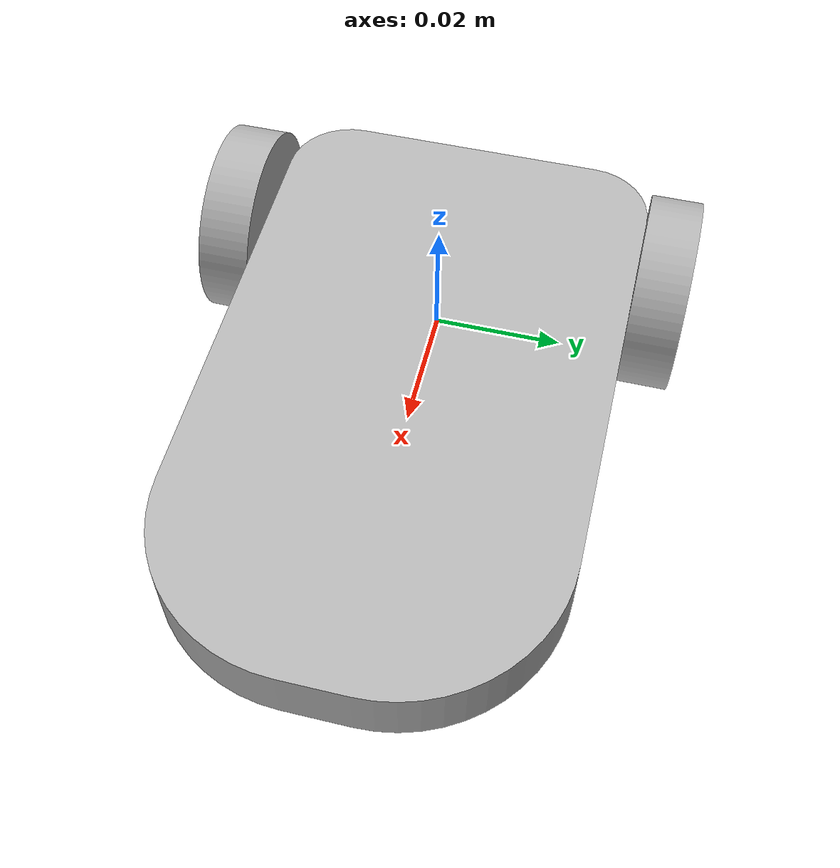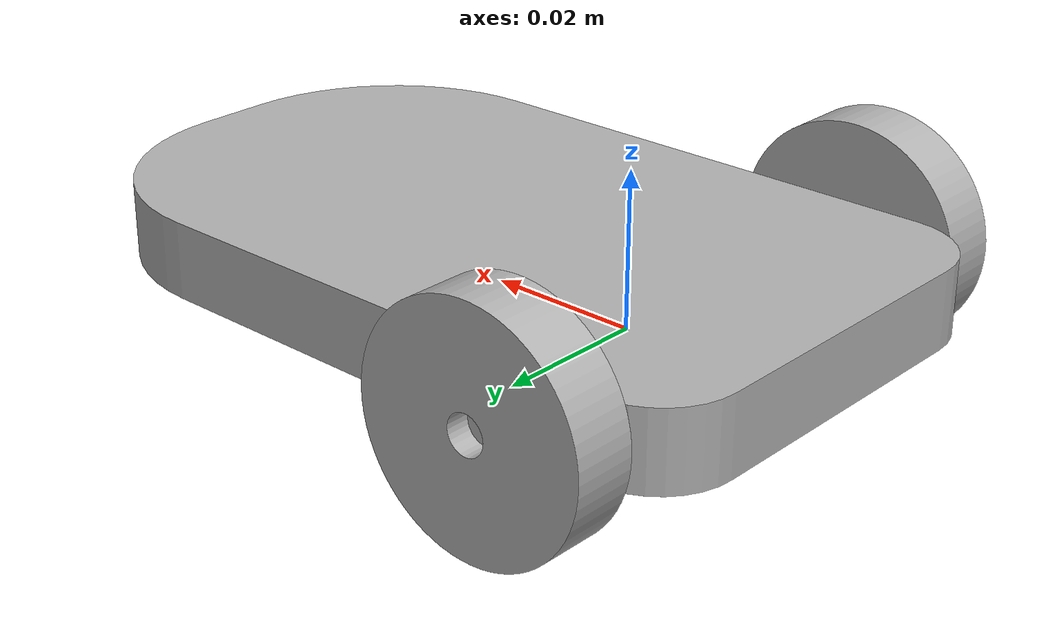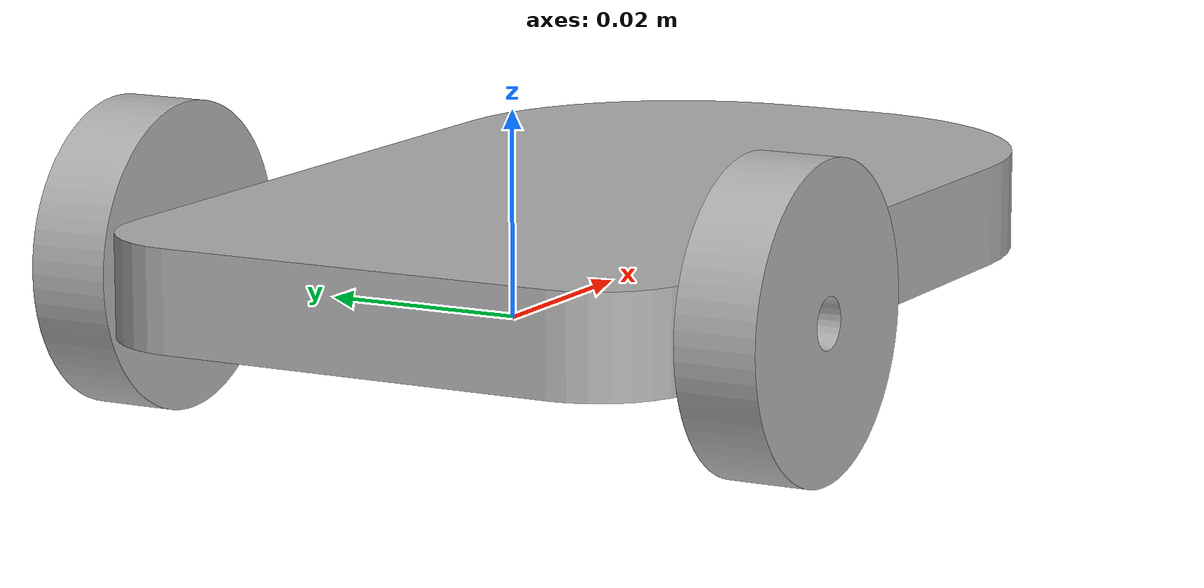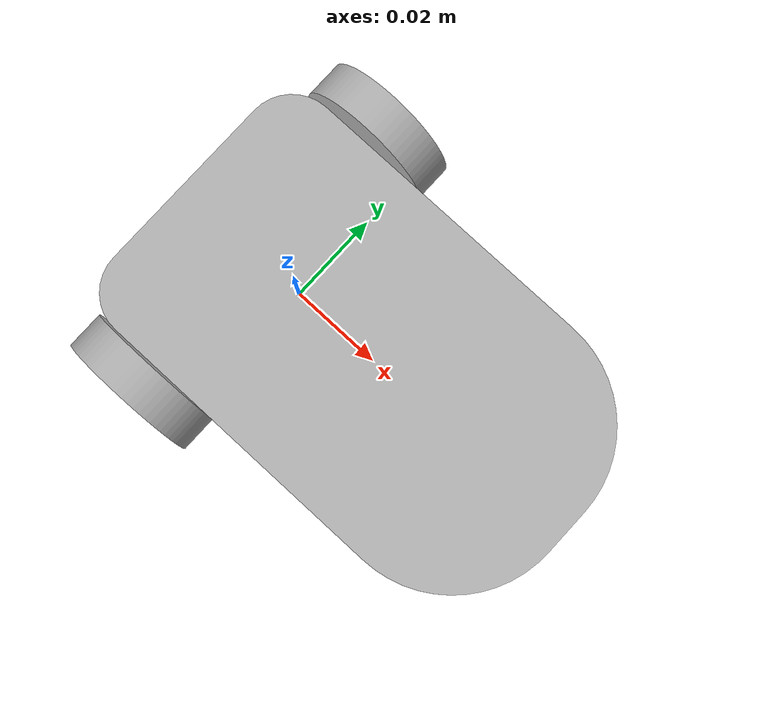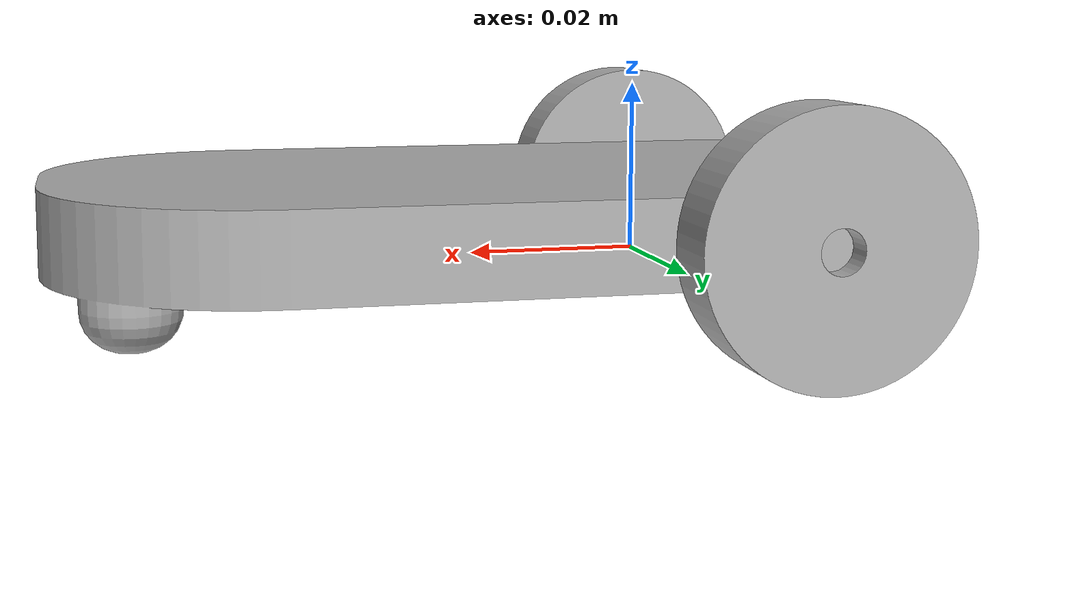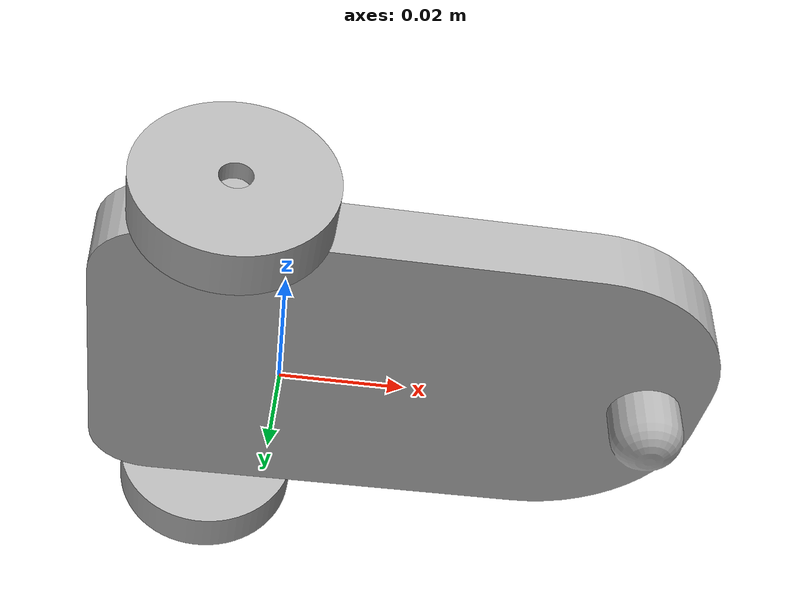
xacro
<?xml version="1.0" ?>
<robot name="diff_drive_bot" xmlns:xacro="http://www.ros.org/wiki/xacro">

<xacro:include filename="$(find diff_drive_bot_description)/urdf/materials.xacro" />
<xacro:include filename="$(find diff_drive_bot_description)/urdf/diff_drive_bot.trans" />
<xacro:include filename="$(find diff_drive_bot_description)/urdf/diff_drive_bot.gazebo" />
<link name="base_link">
  <inertial>
    <origin xyz="0.018865120933738124 0.0 0.004844242660722088" rpy="0 0 0"/>
    <mass value="0.4557002479016382"/>
    <inertia ixx="0.000132" iyy="0.00036" izz="0.000483" ixy="0.0" iyz="0.0" ixz="3e-06"/>
  </inertial>
  <visual>
    <origin xyz="0 0 0" rpy="0 0 0"/>
    <geometry>
      <mesh filename="package://diff_drive_bot_description/meshes/base_link.stl" scale="0.001 0.001 0.001"/>
    </geometry>
    <material name="silver"/>
  </visual>
  <collision>
    <origin xyz="0 0 0" rpy="0 0 0"/>
    <geometry>
      <mesh filename="package://diff_drive_bot_description/meshes/base_link.stl" scale="0.001 0.001 0.001"/>
    </geometry>
  </collision>
</link>

<link name="wheel_right_1">
  <inertial>
    <origin xyz="-1.4901907659237157e-10 0.0040000000000000036 7.450580256918027e-11" rpy="0 0 0"/>
    <mass value="0.04315762907868972"/>
    <inertia ixx="3e-06" iyy="5e-06" izz="3e-06" ixy="0.0" iyz="-0.0" ixz="-0.0"/>
  </inertial>
  <visual>
    <origin xyz="0.01 -0.03 -0.005" rpy="0 0 0"/>
    <geometry>
      <mesh filename="package://diff_drive_bot_description/meshes/wheel_right_1.stl" scale="0.001 0.001 0.001"/>
    </geometry>
    <material name="silver"/>
  </visual>
  <collision>
    <origin xyz="0.01 -0.03 -0.005" rpy="0 0 0"/>
    <geometry>
      <mesh filename="package://diff_drive_bot_description/meshes/wheel_right_1.stl" scale="0.001 0.001 0.001"/>
    </geometry>
  </collision>
</link>

<link name="wheel_left_1">
  <inertial>
    <origin xyz="-1.4901907659237157e-10 -0.0040000000000000036 7.450580256918027e-11" rpy="0 0 0"/>
    <mass value="0.04315762907868972"/>
    <inertia ixx="3e-06" iyy="5e-06" izz="3e-06" ixy="0.0" iyz="0.0" ixz="-0.0"/>
  </inertial>
  <visual>
    <origin xyz="0.01 0.03 -0.005" rpy="0 0 0"/>
    <geometry>
      <mesh filename="package://diff_drive_bot_description/meshes/wheel_left_1.stl" scale="0.001 0.001 0.001"/>
    </geometry>
    <material name="silver"/>
  </visual>
  <collision>
    <origin xyz="0.01 0.03 -0.005" rpy="0 0 0"/>
    <geometry>
      <mesh filename="package://diff_drive_bot_description/meshes/wheel_left_1.stl" scale="0.001 0.001 0.001"/>
    </geometry>
  </collision>
</link>

<joint name="Rev_right" type="continuous">
  <origin xyz="-0.01 0.03 0.005" rpy="0 0 0"/>
  <parent link="base_link"/>
  <child link="wheel_right_1"/>
  <axis xyz="0.0 1.0 0.0"/>
</joint>

<joint name="Rev_left" type="continuous">
  <origin xyz="-0.01 -0.03 0.005" rpy="0 0 0"/>
  <parent link="base_link"/>
  <child link="wheel_left_1"/>
  <axis xyz="0.0 1.0 0.0"/>
</joint>

</robot>

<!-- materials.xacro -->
<robot name="diff_drive_bot" xmlns:xacro="http://www.ros.org/wiki/xacro" >

<material name="silver">
  <color rgba="0.700 0.700 0.700 1.000"/>
</material>

</robot>

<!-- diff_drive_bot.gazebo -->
<robot name="diff_drive_bot" xmlns:xacro="http://www.ros.org/wiki/xacro" >

<xacro:property name="body_color" value="Gazebo/Silver" />

<gazebo>
  <plugin name="control" filename="libgazebo_ros_control.so"/>
</gazebo>
<gazebo reference="base_link">
  <material>${body_color}</material>
  <mu1>0.1</mu1>
  <mu2>0.1</mu2>
  <selfCollide>true</selfCollide>
  <gravity>true</gravity>
</gazebo>

<gazebo reference="wheel_right_1">
  <material>${body_color}</material>
  <mu1>0.2</mu1>
  <mu2>1500</mu2>
  <selfCollide>true</selfCollide>
</gazebo>

<gazebo reference="wheel_left_1">
  <material>${body_color}</material>
  <mu1>0.2</mu1>
  <mu2>1500</mu2>
  <selfCollide>true</selfCollide>
</gazebo>
<gazebo>
  <plugin name="differential_drive_controller" filename="libgazebo_ros_diff_drive.so">

    <!-- Plugin update rate in Hz -->
    <updateRate>50</updateRate>

    <!-- Name of left joint, defaults to `left_joint` -->
    <leftJoint>Rev_left</leftJoint>

    <!-- Name of right joint, defaults to `right_joint` -->
    <rightJoint>Rev_right</rightJoint>

    <!-- The distance from the center of one wheel to the other, in meters, defaults to 0.34 m -->
    <wheelSeparation>0.6</wheelSeparation>

    <!-- Diameter of the wheels, in meters, defaults to 0.15 m -->
    <wheelDiameter>0.3</wheelDiameter>

    <!-- Wheel acceleration, in rad/s^2, defaults to 0.0 rad/s^2 -->
    <wheelAcceleration>1.0</wheelAcceleration>

    <!-- Maximum torque which the wheels can produce, in Nm, defaults to 5 Nm -->
    <wheelTorque>100</wheelTorque>

    <!-- Topic to receive geometry_msgs/Twist message commands, defaults to `cmd_vel` -->
    <commandTopic>cmd_vel</commandTopic>

    <!-- Topic to publish nav_msgs/Odometry messages, defaults to `odom` -->
    <odometryTopic>odom</odometryTopic>

    <!-- Odometry frame, defaults to `odom` -->
    <odometryFrame>odom</odometryFrame>

    <!-- Robot frame to calculate odometry from, defaults to `base_footprint` -->
    <robotBaseFrame>base_footprint</robotBaseFrame>

    <!-- Odometry source, 0 for ENCODER, 1 for WORLD, defaults to WORLD -->
    <odometrySource>1</odometrySource>

    <!-- Set to true to publish transforms for the wheel links, defaults to false -->
    <publishWheelTF>true</publishWheelTF>

    <!-- Set to true to publish transforms for the odometry, defaults to true -->
    <publishOdom>true</publishOdom>

    <!-- Set to true to publish sensor_msgs/JointState on /joint_states for the wheel joints, defaults to false -->
    <publishWheelJointState>true</publishWheelJointState>

    <!-- Set to true to swap right and left wheels, defaults to true -->
    <legacyMode>false</legacyMode>
  </plugin>
</gazebo>
</robot>
